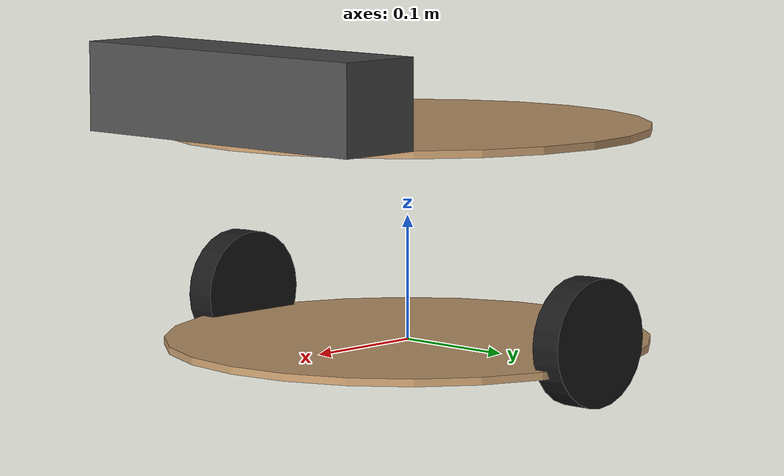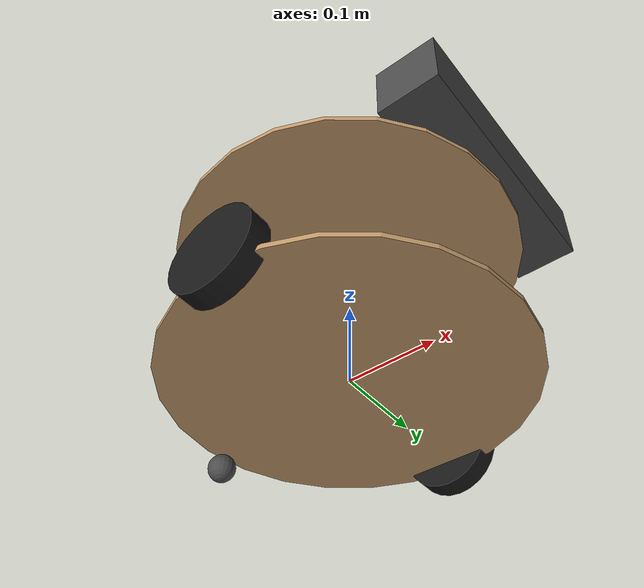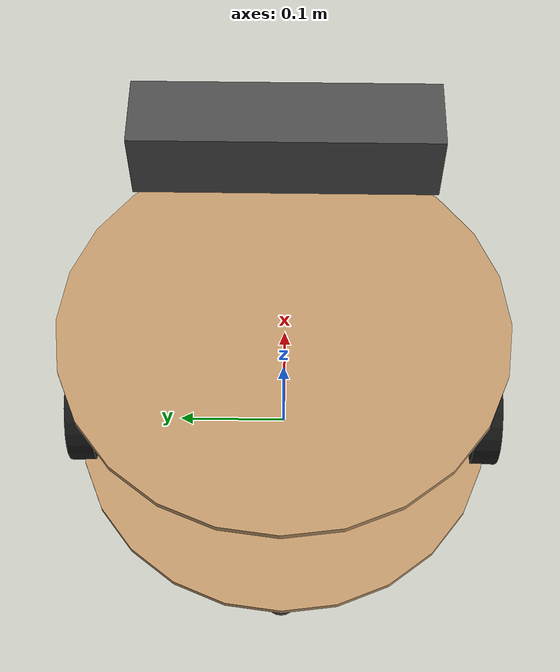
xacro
<?xml version="1.0"?>
<robot xmlns:xacro="http://www.ros.org/wiki/xacro" name="turtlebot">

  <!-- ======================== PARAMETERS ======================== -->
  <!-- TODO: Measure and fill in your actual values -->

  <!-- Base plate (MDF circle) -->
  <xacro:property name="base_radius" value="0.195"/>       <!-- metres -->
  <xacro:property name="base_height" value="0.006"/>      <!-- MDF thickness -->
  <xacro:property name="base_separation" value="0.171"/>   <!-- vertical gap between the two plates -->

  <!-- Wheels -->
  <xacro:property name="wheel_radius" value="0.05"/>
  <xacro:property name="wheel_width" value="0.025"/>
  <xacro:property name="wheel_separation" value="0.38"/> <!-- centre-to-centre, match firmware -->
  <xacro:property name="wheel_z_offset" value="0.020"/>     <!-- wheel centre height relative to base_link -->

  <!-- Caster (passive support) -->
  <xacro:property name="caster_radius" value="0.015"/>

  <!-- Kinect sensor -->
  <xacro:property name="kinect_x_offset" value="0.176"/>    <!-- forward from base centre -->
  <xacro:property name="kinect_z_offset" value="0.0"/>    <!-- height above top plate -->

  <!-- ======================== MATERIALS ======================== -->
  <material name="wood">
    <color rgba="0.76 0.60 0.42 1.0"/>
  </material>
  <material name="black">
    <color rgba="0.1 0.1 0.1 1.0"/>
  </material>
  <material name="dark_grey">
    <color rgba="0.3 0.3 0.3 1.0"/>
  </material>

  <!-- ======================== BASE LINK ======================== -->
  <!-- base_link sits at the centre of the robot at ground level -->
  <link name="base_link"/>

  <!-- base_footprint is on the ground plane (for Nav2) -->
  <link name="base_footprint"/>
  <joint name="base_footprint_joint" type="fixed">
    <parent link="base_link"/>
    <child link="base_footprint"/>
    <origin xyz="0 0 ${-(wheel_radius)}" rpy="0 0 0"/>
  </joint>

  <!-- ======================== BOTTOM PLATE ======================== -->
  <link name="bottom_plate">
    <visual>
      <geometry>
        <cylinder radius="${base_radius}" length="${base_height}"/>
      </geometry>
      <material name="wood"/>
    </visual>
    <collision>
      <geometry>
        <cylinder radius="${base_radius}" length="${base_height}"/>
      </geometry>
    </collision>
    <inertial>
      <mass value="0.5"/>
      <inertia ixx="0.001" ixy="0" ixz="0" iyy="0.001" iyz="0" izz="0.002"/>
    </inertial>
  </link>
  <joint name="bottom_plate_joint" type="fixed">
    <parent link="base_link"/>
    <child link="bottom_plate"/>
    <origin xyz="0 0 0" rpy="0 0 0"/>
  </joint>

  <!-- ======================== TOP PLATE ======================== -->
  <link name="top_plate">
    <visual>
      <geometry>
        <cylinder radius="${base_radius}" length="${base_height}"/>
      </geometry>
      <material name="wood"/>
    </visual>
    <collision>
      <geometry>
        <cylinder radius="${base_radius}" length="${base_height}"/>
      </geometry>
    </collision>
    <inertial>
      <mass value="0.5"/>
      <inertia ixx="0.001" ixy="0" ixz="0" iyy="0.001" iyz="0" izz="0.002"/>
    </inertial>
  </link>
  <joint name="top_plate_joint" type="fixed">
    <parent link="base_link"/>
    <child link="top_plate"/>
    <origin xyz="0 0 ${base_separation}" rpy="0 0 0"/>
  </joint>

  <!-- ======================== WHEEL MACRO ======================== -->
  <xacro:macro name="wheel" params="prefix y_reflect">
    <link name="${prefix}_wheel">
      <visual>
        <geometry>
          <cylinder radius="${wheel_radius}" length="${wheel_width}"/>
        </geometry>
        <origin xyz="0 0 0" rpy="${pi/2} 0 0"/>
        <material name="black"/>
      </visual>
      <collision>
        <geometry>
          <cylinder radius="${wheel_radius}" length="${wheel_width}"/>
        </geometry>
        <origin xyz="0 0 0" rpy="${pi/2} 0 0"/>
      </collision>
      <inertial>
        <mass value="0.2"/>
        <inertia ixx="0.0001" ixy="0" ixz="0" iyy="0.0001" iyz="0" izz="0.0001"/>
      </inertial>
    </link>
    <joint name="${prefix}_wheel_joint" type="continuous">
      <parent link="base_link"/>
      <child link="${prefix}_wheel"/>
      <origin xyz="0 ${y_reflect * wheel_separation / 2} ${wheel_z_offset}" rpy="0 0 0"/>
      <axis xyz="0 1 0"/>
    </joint>
  </xacro:macro>

  <xacro:wheel prefix="left" y_reflect="1"/>
  <xacro:wheel prefix="right" y_reflect="-1"/>

  <!-- ======================== CASTER ======================== -->
  <link name="caster">
    <visual>
      <geometry>
        <sphere radius="${caster_radius}"/>
      </geometry>
      <material name="dark_grey"/>
    </visual>
    <collision>
      <geometry>
        <sphere radius="${caster_radius}"/>
      </geometry>
    </collision>
    <inertial>
      <mass value="0.05"/>
      <inertia ixx="0.00001" ixy="0" ixz="0" iyy="0.00001" iyz="0" izz="0.00001"/>
    </inertial>
  </link>
  <joint name="caster_joint" type="fixed">
    <parent link="base_link"/>
    <child link="caster"/>
    <origin xyz="${-base_radius + caster_radius + 0.01} 0 ${-(wheel_radius - caster_radius)}" rpy="0 0 0"/>
  </joint>

  <!-- ======================== KINECT ======================== -->
  <link name="kinect_link">
    <visual>
      <geometry>
        <box size="0.07 0.28 0.07"/>
      </geometry>
      <material name="dark_grey"/>
    </visual>
    <collision>
      <geometry>
        <box size="0.07 0.28 0.07"/>
      </geometry>
    </collision>
    <inertial>
      <mass value="0.3"/>
      <inertia ixx="0.0002" ixy="0" ixz="0" iyy="0.0002" iyz="0" izz="0.0001"/>
    </inertial>
  </link>
  <joint name="kinect_joint" type="fixed">
    <parent link="top_plate"/>
    <child link="kinect_link"/>
    <origin xyz="${kinect_x_offset} 0 ${base_height/2 + 0.035 + kinect_z_offset}" rpy="0 0 0"/>
  </joint>

  <!-- Kinect optical frame (Z forward, X right, Y down — standard camera convention) -->
  <link name="kinect_depth_frame"/>
  <joint name="kinect_depth_joint" type="fixed">
    <parent link="kinect_link"/>
    <child link="kinect_depth_frame"/>
    <origin xyz="0 0 0" rpy="${-pi/2} 0 ${-pi/2}"/>
  </joint>

  <!-- Alias for the frame_id published by the Kinect driver / depthimage_to_laserscan -->
  <link name="camera_depth_frame"/>
  <joint name="camera_depth_frame_joint" type="fixed">
    <parent link="kinect_link"/>
    <child link="camera_depth_frame"/>
    <origin xyz="0 0 0" rpy="0 0 0"/>
  </joint>

</robot>
